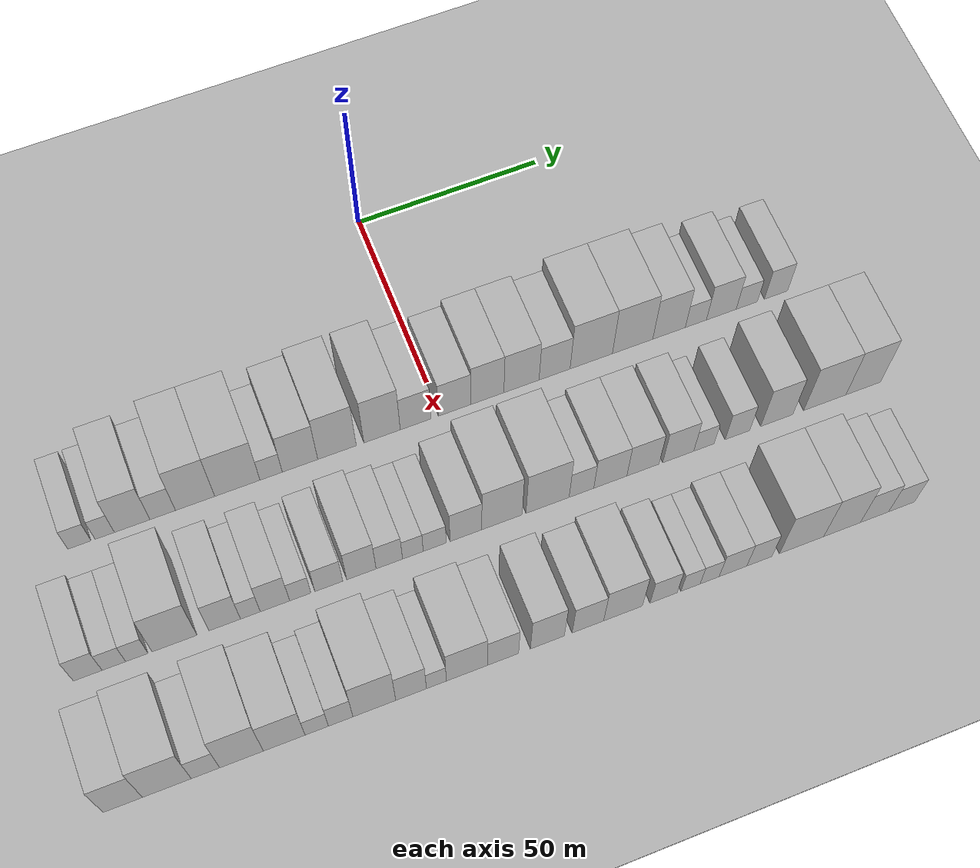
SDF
<sdf version="1.6">
 <world name="default">
  <include><name>ground_plane_1</name><uri>model://HANNAS_ground_plane</uri></include>
  <include>
   <name>ground_plane_2</name>
   <uri>model://HANNAS_ground_plane</uri>
   <pose>100 0 0  0 0 0</pose>
  </include>
  <model name="building_25">
   <static>1</static>
   <pose>50.0000 -93.4552 0 0.000000 0.000000 0.000000</pose>
   <link name="link">
    <pose>0 0 6.00 0 0 0</pose>
    <collision name="collision"><geometry><box><size>20.0000 5.8363 12.0000</size></box></geometry></collision>
    <visual name="visual">
     <cast_shadows>0</cast_shadows>
     <geometry><box><size>20.0000 5.8363 12.0000</size></box></geometry>
     <material>
      <script>
       <uri>model://HANNAS_wall/materials/scripts</uri>
       <uri>model://HANNAS_wall/materials/textures</uri>
       <name>vrc/HANNAS_wall</name>
      </script>
     </material>
    </visual>
   </link>
  </model>
  <model name="building_26">
   <static>1</static>
   <pose>50.0000 -87.1058 0 0.000000 0.000000 0.000000</pose>
   <link name="link">
    <pose>0 0 6.00 0 0 0</pose>
    <collision name="collision"><geometry><box><size>20.0000 4.8624 12.0000</size></box></geometry></collision>
    <visual name="visual">
     <cast_shadows>0</cast_shadows>
     <geometry><box><size>20.0000 4.8624 12.0000</size></box></geometry>
     <material>
      <script>
       <uri>model://HANNAS_wall/materials/scripts</uri>
       <uri>model://HANNAS_wall/materials/textures</uri>
       <name>vrc/HANNAS_wall</name>
      </script>
     </material>
    </visual>
   </link>
  </model>
  <model name="building_27">
   <static>1</static>
   <pose>50.0000 -80.1643 0 0.000000 0.000000 0.000000</pose>
   <link name="link">
    <pose>0 0 10.50 0 0 0</pose>
    <collision name="collision"><geometry><box><size>20.0000 9.0205 21.0000</size></box></geometry></collision>
    <visual name="visual">
     <cast_shadows>0</cast_shadows>
     <geometry><box><size>20.0000 9.0205 21.0000</size></box></geometry>
     <material>
      <script>
       <uri>model://HANNAS_wall/materials/scripts</uri>
       <uri>model://HANNAS_wall/materials/textures</uri>
       <name>vrc/HANNAS_wall</name>
      </script>
     </material>
    </visual>
   </link>
  </model>
  <model name="building_28">
   <static>1</static>
   <pose>50.0000 -72.4068 0 0.000000 0.000000 0.000000</pose>
   <link name="link">
    <pose>0 0 7.50 0 0 0</pose>
    <collision name="collision"><geometry><box><size>20.0000 6.4945 15.0000</size></box></geometry></collision>
    <visual name="visual">
     <cast_shadows>0</cast_shadows>
     <geometry><box><size>20.0000 6.4945 15.0000</size></box></geometry>
     <material>
      <script>
       <uri>model://HANNAS_wall/materials/scripts</uri>
       <uri>model://HANNAS_wall/materials/textures</uri>
       <name>vrc/HANNAS_wall</name>
      </script>
     </material>
    </visual>
   </link>
  </model>
  <model name="building_29">
   <static>1</static>
   <pose>50.0000 -64.1397 0 0.000000 0.000000 0.000000</pose>
   <link name="link">
    <pose>0 0 12.00 0 0 0</pose>
    <collision name="collision"><geometry><box><size>20.0000 10.0398 24.0000</size></box></geometry></collision>
    <visual name="visual">
     <cast_shadows>0</cast_shadows>
     <geometry><box><size>20.0000 10.0398 24.0000</size></box></geometry>
     <material>
      <script>
       <uri>model://HANNAS_wall/materials/scripts</uri>
       <uri>model://HANNAS_wall/materials/textures</uri>
       <name>vrc/HANNAS_wall</name>
      </script>
     </material>
    </visual>
   </link>
  </model>
  <model name="building_30">
   <static>1</static>
   <pose>50.0000 -53.2822 0 0.000000 0.000000 0.000000</pose>
   <link name="link">
    <pose>0 0 12.00 0 0 0</pose>
    <collision name="collision"><geometry><box><size>20.0000 11.6751 24.0000</size></box></geometry></collision>
    <visual name="visual">
     <cast_shadows>0</cast_shadows>
     <geometry><box><size>20.0000 11.6751 24.0000</size></box></geometry>
     <material>
      <script>
       <uri>model://HANNAS_wall/materials/scripts</uri>
       <uri>model://HANNAS_wall/materials/textures</uri>
       <name>vrc/HANNAS_wall</name>
      </script>
     </material>
    </visual>
   </link>
  </model>
  <model name="building_31">
   <static>1</static>
   <pose>50.0000 -44.5478 0 0.000000 0.000000 0.000000</pose>
   <link name="link">
    <pose>0 0 6.00 0 0 0</pose>
    <collision name="collision"><geometry><box><size>20.0000 5.7937 12.0000</size></box></geometry></collision>
    <visual name="visual">
     <cast_shadows>0</cast_shadows>
     <geometry><box><size>20.0000 5.7937 12.0000</size></box></geometry>
     <material>
      <script>
       <uri>model://HANNAS_wall/materials/scripts</uri>
       <uri>model://HANNAS_wall/materials/textures</uri>
       <name>vrc/HANNAS_wall</name>
      </script>
     </material>
    </visual>
   </link>
  </model>
  <model name="building_32">
   <static>1</static>
   <pose>50.0000 -37.0297 0 0.000000 0.000000 0.000000</pose>
   <link name="link">
    <pose>0 0 10.50 0 0 0</pose>
    <collision name="collision"><geometry><box><size>20.0000 9.2426 21.0000</size></box></geometry></collision>
    <visual name="visual">
     <cast_shadows>0</cast_shadows>
     <geometry><box><size>20.0000 9.2426 21.0000</size></box></geometry>
     <material>
      <script>
       <uri>model://HANNAS_wall/materials/scripts</uri>
       <uri>model://HANNAS_wall/materials/textures</uri>
       <name>vrc/HANNAS_wall</name>
      </script>
     </material>
    </visual>
   </link>
  </model>
  <model name="building_33">
   <static>1</static>
   <pose>50.0000 -27.3568 0 0.000000 0.000000 0.000000</pose>
   <link name="link">
    <pose>0 0 12.00 0 0 0</pose>
    <collision name="collision"><geometry><box><size>20.0000 10.1032 24.0000</size></box></geometry></collision>
    <visual name="visual">
     <cast_shadows>0</cast_shadows>
     <geometry><box><size>20.0000 10.1032 24.0000</size></box></geometry>
     <material>
      <script>
       <uri>model://HANNAS_wall/materials/scripts</uri>
       <uri>model://HANNAS_wall/materials/textures</uri>
       <name>vrc/HANNAS_wall</name>
      </script>
     </material>
    </visual>
   </link>
  </model>
  <model name="building_34">
   <static>1</static>
   <pose>50.0000 -15.4918 0 0.000000 0.000000 0.000000</pose>
   <link name="link">
    <pose>0 0 12.00 0 0 0</pose>
    <collision name="collision"><geometry><box><size>20.0000 9.6268 24.0000</size></box></geometry></collision>
    <visual name="visual">
     <cast_shadows>0</cast_shadows>
     <geometry><box><size>20.0000 9.6268 24.0000</size></box></geometry>
     <material>
      <script>
       <uri>model://HANNAS_wall/materials/scripts</uri>
       <uri>model://HANNAS_wall/materials/textures</uri>
       <name>vrc/HANNAS_wall</name>
      </script>
     </material>
    </visual>
   </link>
  </model>
  <model name="building_35">
   <static>1</static>
   <pose>50.0000 -6.5953 0 0.000000 0.000000 0.000000</pose>
   <link name="link">
    <pose>0 0 9.00 0 0 0</pose>
    <collision name="collision"><geometry><box><size>20.0000 8.1662 18.0000</size></box></geometry></collision>
    <visual name="visual">
     <cast_shadows>0</cast_shadows>
     <geometry><box><size>20.0000 8.1662 18.0000</size></box></geometry>
     <material>
      <script>
       <uri>model://HANNAS_wall/materials/scripts</uri>
       <uri>model://HANNAS_wall/materials/textures</uri>
       <name>vrc/HANNAS_wall</name>
      </script>
     </material>
    </visual>
   </link>
  </model>
  <model name="building_36">
   <static>1</static>
   <pose>50.0000 3.8273 0 0.000000 0.000000 0.000000</pose>
   <link name="link">
    <pose>0 0 9.00 0 0 0</pose>
    <collision name="collision"><geometry><box><size>20.0000 8.6790 18.0000</size></box></geometry></collision>
    <visual name="visual">
     <cast_shadows>0</cast_shadows>
     <geometry><box><size>20.0000 8.6790 18.0000</size></box></geometry>
     <material>
      <script>
       <uri>model://HANNAS_wall/materials/scripts</uri>
       <uri>model://HANNAS_wall/materials/textures</uri>
       <name>vrc/HANNAS_wall</name>
      </script>
     </material>
    </visual>
   </link>
  </model>
  <model name="building_37">
   <static>1</static>
   <pose>50.0000 12.6170 0 0.000000 0.000000 0.000000</pose>
   <link name="link">
    <pose>0 0 10.50 0 0 0</pose>
    <collision name="collision"><geometry><box><size>20.0000 8.9003 21.0000</size></box></geometry></collision>
    <visual name="visual">
     <cast_shadows>0</cast_shadows>
     <geometry><box><size>20.0000 8.9003 21.0000</size></box></geometry>
     <material>
      <script>
       <uri>model://HANNAS_wall/materials/scripts</uri>
       <uri>model://HANNAS_wall/materials/textures</uri>
       <name>vrc/HANNAS_wall</name>
      </script>
     </material>
    </visual>
   </link>
  </model>
  <model name="building_38">
   <static>1</static>
   <pose>50.0000 21.8389 0 0.000000 0.000000 0.000000</pose>
   <link name="link">
    <pose>0 0 10.50 0 0 0</pose>
    <collision name="collision"><geometry><box><size>20.0000 9.5435 21.0000</size></box></geometry></collision>
    <visual name="visual">
     <cast_shadows>0</cast_shadows>
     <geometry><box><size>20.0000 9.5435 21.0000</size></box></geometry>
     <material>
      <script>
       <uri>model://HANNAS_wall/materials/scripts</uri>
       <uri>model://HANNAS_wall/materials/textures</uri>
       <name>vrc/HANNAS_wall</name>
      </script>
     </material>
    </visual>
   </link>
  </model>
  <model name="building_39">
   <static>1</static>
   <pose>50.0000 30.8368 0 0.000000 0.000000 0.000000</pose>
   <link name="link">
    <pose>0 0 9.00 0 0 0</pose>
    <collision name="collision"><geometry><box><size>20.0000 8.4524 18.0000</size></box></geometry></collision>
    <visual name="visual">
     <cast_shadows>0</cast_shadows>
     <geometry><box><size>20.0000 8.4524 18.0000</size></box></geometry>
     <material>
      <script>
       <uri>model://HANNAS_wall/materials/scripts</uri>
       <uri>model://HANNAS_wall/materials/textures</uri>
       <name>vrc/HANNAS_wall</name>
      </script>
     </material>
    </visual>
   </link>
  </model>
  <model name="building_40">
   <static>1</static>
   <pose>50.0000 40.8845 0 0.000000 0.000000 0.000000</pose>
   <link name="link">
    <pose>0 0 12.00 0 0 0</pose>
    <collision name="collision"><geometry><box><size>20.0000 11.6430 24.0000</size></box></geometry></collision>
    <visual name="visual">
     <cast_shadows>0</cast_shadows>
     <geometry><box><size>20.0000 11.6430 24.0000</size></box></geometry>
     <material>
      <script>
       <uri>model://HANNAS_wall/materials/scripts</uri>
       <uri>model://HANNAS_wall/materials/textures</uri>
       <name>vrc/HANNAS_wall</name>
      </script>
     </material>
    </visual>
   </link>
  </model>
  <model name="building_41">
   <static>1</static>
   <pose>50.0000 52.2881 0 0.000000 0.000000 0.000000</pose>
   <link name="link">
    <pose>0 0 12.00 0 0 0</pose>
    <collision name="collision"><geometry><box><size>20.0000 11.1642 24.0000</size></box></geometry></collision>
    <visual name="visual">
     <cast_shadows>0</cast_shadows>
     <geometry><box><size>20.0000 11.1642 24.0000</size></box></geometry>
     <material>
      <script>
       <uri>model://HANNAS_wall/materials/scripts</uri>
       <uri>model://HANNAS_wall/materials/textures</uri>
       <name>vrc/HANNAS_wall</name>
      </script>
     </material>
    </visual>
   </link>
  </model>
  <model name="building_42">
   <static>1</static>
   <pose>50.0000 62.4153 0 0.000000 0.000000 0.000000</pose>
   <link name="link">
    <pose>0 0 10.50 0 0 0</pose>
    <collision name="collision"><geometry><box><size>20.0000 9.0902 21.0000</size></box></geometry></collision>
    <visual name="visual">
     <cast_shadows>0</cast_shadows>
     <geometry><box><size>20.0000 9.0902 21.0000</size></box></geometry>
     <material>
      <script>
       <uri>model://HANNAS_wall/materials/scripts</uri>
       <uri>model://HANNAS_wall/materials/textures</uri>
       <name>vrc/HANNAS_wall</name>
      </script>
     </material>
    </visual>
   </link>
  </model>
  <model name="building_43">
   <static>1</static>
   <pose>50.0000 69.9059 0 0.000000 0.000000 0.000000</pose>
   <link name="link">
    <pose>0 0 6.00 0 0 0</pose>
    <collision name="collision"><geometry><box><size>20.0000 5.8910 12.0000</size></box></geometry></collision>
    <visual name="visual">
     <cast_shadows>0</cast_shadows>
     <geometry><box><size>20.0000 5.8910 12.0000</size></box></geometry>
     <material>
      <script>
       <uri>model://HANNAS_wall/materials/scripts</uri>
       <uri>model://HANNAS_wall/materials/textures</uri>
       <name>vrc/HANNAS_wall</name>
      </script>
     </material>
    </visual>
   </link>
  </model>
  <model name="building_44">
   <static>1</static>
   <pose>50.0000 77.0381 0 0.000000 0.000000 0.000000</pose>
   <link name="link">
    <pose>0 0 9.00 0 0 0</pose>
    <collision name="collision"><geometry><box><size>20.0000 8.3734 18.0000</size></box></geometry></collision>
    <visual name="visual">
     <cast_shadows>0</cast_shadows>
     <geometry><box><size>20.0000 8.3734 18.0000</size></box></geometry>
     <material>
      <script>
       <uri>model://HANNAS_wall/materials/scripts</uri>
       <uri>model://HANNAS_wall/materials/textures</uri>
       <name>vrc/HANNAS_wall</name>
      </script>
     </material>
    </visual>
   </link>
  </model>
  <model name="building_45">
   <static>1</static>
   <pose>50.0000 84.2231 0 0.000000 0.000000 0.000000</pose>
   <link name="link">
    <pose>0 0 6.00 0 0 0</pose>
    <collision name="collision"><geometry><box><size>20.0000 5.9965 12.0000</size></box></geometry></collision>
    <visual name="visual">
     <cast_shadows>0</cast_shadows>
     <geometry><box><size>20.0000 5.9965 12.0000</size></box></geometry>
     <material>
      <script>
       <uri>model://HANNAS_wall/materials/scripts</uri>
       <uri>model://HANNAS_wall/materials/textures</uri>
       <name>vrc/HANNAS_wall</name>
      </script>
     </material>
    </visual>
   </link>
  </model>
  <model name="building_46">
   <static>1</static>
   <pose>50.0000 92.5135 0 0.000000 0.000000 0.000000</pose>
   <link name="link">
    <pose>0 0 7.50 0 0 0</pose>
    <collision name="collision"><geometry><box><size>20.0000 6.5844 15.0000</size></box></geometry></collision>
    <visual name="visual">
     <cast_shadows>0</cast_shadows>
     <geometry><box><size>20.0000 6.5844 15.0000</size></box></geometry>
     <material>
      <script>
       <uri>model://HANNAS_wall/materials/scripts</uri>
       <uri>model://HANNAS_wall/materials/textures</uri>
       <name>vrc/HANNAS_wall</name>
      </script>
     </material>
    </visual>
   </link>
  </model>
  <model name="building_99">
   <static>1</static>
   <pose>82.0000 -100.7794 0 0.000000 0.000000 0.000000</pose>
   <link name="link">
    <pose>0 0 7.50 0 0 0</pose>
    <collision name="collision"><geometry><box><size>20.0000 7.0181 15.0000</size></box></geometry></collision>
    <visual name="visual">
     <cast_shadows>0</cast_shadows>
     <geometry><box><size>20.0000 7.0181 15.0000</size></box></geometry>
     <material>
      <script>
       <uri>model://HANNAS_wall/materials/scripts</uri>
       <uri>model://HANNAS_wall/materials/textures</uri>
       <name>vrc/HANNAS_wall</name>
      </script>
     </material>
    </visual>
   </link>
  </model>
  <model name="building_100">
   <static>1</static>
   <pose>82.0000 -94.3879 0 0.000000 0.000000 0.000000</pose>
   <link name="link">
    <pose>0 0 6.00 0 0 0</pose>
    <collision name="collision"><geometry><box><size>20.0000 5.7650 12.0000</size></box></geometry></collision>
    <visual name="visual">
     <cast_shadows>0</cast_shadows>
     <geometry><box><size>20.0000 5.7650 12.0000</size></box></geometry>
     <material>
      <script>
       <uri>model://HANNAS_wall/materials/scripts</uri>
       <uri>model://HANNAS_wall/materials/textures</uri>
       <name>vrc/HANNAS_wall</name>
      </script>
     </material>
    </visual>
   </link>
  </model>
  <model name="building_101">
   <static>1</static>
   <pose>82.0000 -88.7665 0 0.000000 0.000000 0.000000</pose>
   <link name="link">
    <pose>0 0 6.00 0 0 0</pose>
    <collision name="collision"><geometry><box><size>20.0000 5.4777 12.0000</size></box></geometry></collision>
    <visual name="visual">
     <cast_shadows>0</cast_shadows>
     <geometry><box><size>20.0000 5.4777 12.0000</size></box></geometry>
     <material>
      <script>
       <uri>model://HANNAS_wall/materials/scripts</uri>
       <uri>model://HANNAS_wall/materials/textures</uri>
       <name>vrc/HANNAS_wall</name>
      </script>
     </material>
    </visual>
   </link>
  </model>
  <model name="building_102">
   <static>1</static>
   <pose>82.0000 -79.4853 0 0.000000 0.000000 0.000000</pose>
   <link name="link">
    <pose>0 0 12.00 0 0 0</pose>
    <collision name="collision"><geometry><box><size>20.0000 11.0846 24.0000</size></box></geometry></collision>
    <visual name="visual">
     <cast_shadows>0</cast_shadows>
     <geometry><box><size>20.0000 11.0846 24.0000</size></box></geometry>
     <material>
      <script>
       <uri>model://HANNAS_wall/materials/scripts</uri>
       <uri>model://HANNAS_wall/materials/textures</uri>
       <name>vrc/HANNAS_wall</name>
      </script>
     </material>
    </visual>
   </link>
  </model>
  <model name="building_103">
   <static>1</static>
   <pose>82.0000 -67.0292 0 0.000000 0.000000 0.000000</pose>
   <link name="link">
    <pose>0 0 9.00 0 0 0</pose>
    <collision name="collision"><geometry><box><size>20.0000 7.8277 18.0000</size></box></geometry></collision>
    <visual name="visual">
     <cast_shadows>0</cast_shadows>
     <geometry><box><size>20.0000 7.8277 18.0000</size></box></geometry>
     <material>
      <script>
       <uri>model://HANNAS_wall/materials/scripts</uri>
       <uri>model://HANNAS_wall/materials/textures</uri>
       <name>vrc/HANNAS_wall</name>
      </script>
     </material>
    </visual>
   </link>
  </model>
  <model name="building_104">
   <static>1</static>
   <pose>82.0000 -60.6409 0 0.000000 0.000000 0.000000</pose>
   <link name="link">
    <pose>0 0 6.00 0 0 0</pose>
    <collision name="collision"><geometry><box><size>20.0000 4.9489 12.0000</size></box></geometry></collision>
    <visual name="visual">
     <cast_shadows>0</cast_shadows>
     <geometry><box><size>20.0000 4.9489 12.0000</size></box></geometry>
     <material>
      <script>
       <uri>model://HANNAS_wall/materials/scripts</uri>
       <uri>model://HANNAS_wall/materials/textures</uri>
       <name>vrc/HANNAS_wall</name>
      </script>
     </material>
    </visual>
   </link>
  </model>
  <model name="building_105">
   <static>1</static>
   <pose>82.0000 -54.4743 0 0.000000 0.000000 0.000000</pose>
   <link name="link">
    <pose>0 0 9.00 0 0 0</pose>
    <collision name="collision"><geometry><box><size>20.0000 7.3844 18.0000</size></box></geometry></collision>
    <visual name="visual">
     <cast_shadows>0</cast_shadows>
     <geometry><box><size>20.0000 7.3844 18.0000</size></box></geometry>
     <material>
      <script>
       <uri>model://HANNAS_wall/materials/scripts</uri>
       <uri>model://HANNAS_wall/materials/textures</uri>
       <name>vrc/HANNAS_wall</name>
      </script>
     </material>
    </visual>
   </link>
  </model>
  <model name="building_106">
   <static>1</static>
   <pose>82.0000 -48.0901 0 0.000000 0.000000 0.000000</pose>
   <link name="link">
    <pose>0 0 6.00 0 0 0</pose>
    <collision name="collision"><geometry><box><size>20.0000 5.3839 12.0000</size></box></geometry></collision>
    <visual name="visual">
     <cast_shadows>0</cast_shadows>
     <geometry><box><size>20.0000 5.3839 12.0000</size></box></geometry>
     <material>
      <script>
       <uri>model://HANNAS_wall/materials/scripts</uri>
       <uri>model://HANNAS_wall/materials/textures</uri>
       <name>vrc/HANNAS_wall</name>
      </script>
     </material>
    </visual>
   </link>
  </model>
  <model name="building_107">
   <static>1</static>
   <pose>82.0000 -40.8551 0 0.000000 0.000000 0.000000</pose>
   <link name="link">
    <pose>0 0 7.50 0 0 0</pose>
    <collision name="collision"><geometry><box><size>20.0000 7.0862 15.0000</size></box></geometry></collision>
    <visual name="visual">
     <cast_shadows>0</cast_shadows>
     <geometry><box><size>20.0000 7.0862 15.0000</size></box></geometry>
     <material>
      <script>
       <uri>model://HANNAS_wall/materials/scripts</uri>
       <uri>model://HANNAS_wall/materials/textures</uri>
       <name>vrc/HANNAS_wall</name>
      </script>
     </material>
    </visual>
   </link>
  </model>
  <model name="building_108">
   <static>1</static>
   <pose>82.0000 -32.5612 0 0.000000 0.000000 0.000000</pose>
   <link name="link">
    <pose>0 0 9.00 0 0 0</pose>
    <collision name="collision"><geometry><box><size>20.0000 7.5016 18.0000</size></box></geometry></collision>
    <visual name="visual">
     <cast_shadows>0</cast_shadows>
     <geometry><box><size>20.0000 7.5016 18.0000</size></box></geometry>
     <material>
      <script>
       <uri>model://HANNAS_wall/materials/scripts</uri>
       <uri>model://HANNAS_wall/materials/textures</uri>
       <name>vrc/HANNAS_wall</name>
      </script>
     </material>
    </visual>
   </link>
  </model>
  <model name="building_109">
   <static>1</static>
   <pose>82.0000 -25.4189 0 0.000000 0.000000 0.000000</pose>
   <link name="link">
    <pose>0 0 7.50 0 0 0</pose>
    <collision name="collision"><geometry><box><size>20.0000 6.7830 15.0000</size></box></geometry></collision>
    <visual name="visual">
     <cast_shadows>0</cast_shadows>
     <geometry><box><size>20.0000 6.7830 15.0000</size></box></geometry>
     <material>
      <script>
       <uri>model://HANNAS_wall/materials/scripts</uri>
       <uri>model://HANNAS_wall/materials/textures</uri>
       <name>vrc/HANNAS_wall</name>
      </script>
     </material>
    </visual>
   </link>
  </model>
  <model name="building_110">
   <static>1</static>
   <pose>82.0000 -19.3626 0 0.000000 0.000000 0.000000</pose>
   <link name="link">
    <pose>0 0 6.00 0 0 0</pose>
    <collision name="collision"><geometry><box><size>20.0000 5.3297 12.0000</size></box></geometry></collision>
    <visual name="visual">
     <cast_shadows>0</cast_shadows>
     <geometry><box><size>20.0000 5.3297 12.0000</size></box></geometry>
     <material>
      <script>
       <uri>model://HANNAS_wall/materials/scripts</uri>
       <uri>model://HANNAS_wall/materials/textures</uri>
       <name>vrc/HANNAS_wall</name>
      </script>
     </material>
    </visual>
   </link>
  </model>
  <model name="building_111">
   <static>1</static>
   <pose>82.0000 -13.7216 0 0.000000 0.000000 0.000000</pose>
   <link name="link">
    <pose>0 0 6.00 0 0 0</pose>
    <collision name="collision"><geometry><box><size>20.0000 5.9522 12.0000</size></box></geometry></collision>
    <visual name="visual">
     <cast_shadows>0</cast_shadows>
     <geometry><box><size>20.0000 5.9522 12.0000</size></box></geometry>
     <material>
      <script>
       <uri>model://HANNAS_wall/materials/scripts</uri>
       <uri>model://HANNAS_wall/materials/textures</uri>
       <name>vrc/HANNAS_wall</name>
      </script>
     </material>
    </visual>
   </link>
  </model>
  <model name="building_112">
   <static>1</static>
   <pose>82.0000 -5.6288 0 0.000000 0.000000 0.000000</pose>
   <link name="link">
    <pose>0 0 9.00 0 0 0</pose>
    <collision name="collision"><geometry><box><size>20.0000 8.2335 18.0000</size></box></geometry></collision>
    <visual name="visual">
     <cast_shadows>0</cast_shadows>
     <geometry><box><size>20.0000 8.2335 18.0000</size></box></geometry>
     <material>
      <script>
       <uri>model://HANNAS_wall/materials/scripts</uri>
       <uri>model://HANNAS_wall/materials/textures</uri>
       <name>vrc/HANNAS_wall</name>
      </script>
     </material>
    </visual>
   </link>
  </model>
  <model name="building_113">
   <static>1</static>
   <pose>82.0000 3.7728 0 0.000000 0.000000 0.000000</pose>
   <link name="link">
    <pose>0 0 12.00 0 0 0</pose>
    <collision name="collision"><geometry><box><size>20.0000 10.5697 24.0000</size></box></geometry></collision>
    <visual name="visual">
     <cast_shadows>0</cast_shadows>
     <geometry><box><size>20.0000 10.5697 24.0000</size></box></geometry>
     <material>
      <script>
       <uri>model://HANNAS_wall/materials/scripts</uri>
       <uri>model://HANNAS_wall/materials/textures</uri>
       <name>vrc/HANNAS_wall</name>
      </script>
     </material>
    </visual>
   </link>
  </model>
  <model name="building_114">
   <static>1</static>
   <pose>82.0000 15.7465 0 0.000000 0.000000 0.000000</pose>
   <link name="link">
    <pose>0 0 12.00 0 0 0</pose>
    <collision name="collision"><geometry><box><size>20.0000 11.3777 24.0000</size></box></geometry></collision>
    <visual name="visual">
     <cast_shadows>0</cast_shadows>
     <geometry><box><size>20.0000 11.3777 24.0000</size></box></geometry>
     <material>
      <script>
       <uri>model://HANNAS_wall/materials/scripts</uri>
       <uri>model://HANNAS_wall/materials/textures</uri>
       <name>vrc/HANNAS_wall</name>
      </script>
     </material>
    </visual>
   </link>
  </model>
  <model name="building_115">
   <static>1</static>
   <pose>82.0000 24.7164 0 0.000000 0.000000 0.000000</pose>
   <link name="link">
    <pose>0 0 7.50 0 0 0</pose>
    <collision name="collision"><geometry><box><size>20.0000 6.5621 15.0000</size></box></geometry></collision>
    <visual name="visual">
     <cast_shadows>0</cast_shadows>
     <geometry><box><size>20.0000 6.5621 15.0000</size></box></geometry>
     <material>
      <script>
       <uri>model://HANNAS_wall/materials/scripts</uri>
       <uri>model://HANNAS_wall/materials/textures</uri>
       <name>vrc/HANNAS_wall</name>
      </script>
     </material>
    </visual>
   </link>
  </model>
  <model name="building_116">
   <static>1</static>
   <pose>82.0000 32.4088 0 0.000000 0.000000 0.000000</pose>
   <link name="link">
    <pose>0 0 9.00 0 0 0</pose>
    <collision name="collision"><geometry><box><size>20.0000 8.8228 18.0000</size></box></geometry></collision>
    <visual name="visual">
     <cast_shadows>0</cast_shadows>
     <geometry><box><size>20.0000 8.8228 18.0000</size></box></geometry>
     <material>
      <script>
       <uri>model://HANNAS_wall/materials/scripts</uri>
       <uri>model://HANNAS_wall/materials/textures</uri>
       <name>vrc/HANNAS_wall</name>
      </script>
     </material>
    </visual>
   </link>
  </model>
  <model name="building_117">
   <static>1</static>
   <pose>82.0000 41.1415 0 0.000000 0.000000 0.000000</pose>
   <link name="link">
    <pose>0 0 9.00 0 0 0</pose>
    <collision name="collision"><geometry><box><size>20.0000 8.6426 18.0000</size></box></geometry></collision>
    <visual name="visual">
     <cast_shadows>0</cast_shadows>
     <geometry><box><size>20.0000 8.6426 18.0000</size></box></geometry>
     <material>
      <script>
       <uri>model://HANNAS_wall/materials/scripts</uri>
       <uri>model://HANNAS_wall/materials/textures</uri>
       <name>vrc/HANNAS_wall</name>
      </script>
     </material>
    </visual>
   </link>
  </model>
  <model name="building_118">
   <static>1</static>
   <pose>82.0000 50.6567 0 0.000000 0.000000 0.000000</pose>
   <link name="link">
    <pose>0 0 9.00 0 0 0</pose>
    <collision name="collision"><geometry><box><size>20.0000 8.3878 18.0000</size></box></geometry></collision>
    <visual name="visual">
     <cast_shadows>0</cast_shadows>
     <geometry><box><size>20.0000 8.3878 18.0000</size></box></geometry>
     <material>
      <script>
       <uri>model://HANNAS_wall/materials/scripts</uri>
       <uri>model://HANNAS_wall/materials/textures</uri>
       <name>vrc/HANNAS_wall</name>
      </script>
     </material>
    </visual>
   </link>
  </model>
  <model name="building_119">
   <static>1</static>
   <pose>82.0000 57.6190 0 0.000000 0.000000 0.000000</pose>
   <link name="link">
    <pose>0 0 6.00 0 0 0</pose>
    <collision name="collision"><geometry><box><size>20.0000 5.5368 12.0000</size></box></geometry></collision>
    <visual name="visual">
     <cast_shadows>0</cast_shadows>
     <geometry><box><size>20.0000 5.5368 12.0000</size></box></geometry>
     <material>
      <script>
       <uri>model://HANNAS_wall/materials/scripts</uri>
       <uri>model://HANNAS_wall/materials/textures</uri>
       <name>vrc/HANNAS_wall</name>
      </script>
     </material>
    </visual>
   </link>
  </model>
  <model name="building_120">
   <static>1</static>
   <pose>82.0000 66.7506 0 0.000000 0.000000 0.000000</pose>
   <link name="link">
    <pose>0 0 7.50 0 0 0</pose>
    <collision name="collision"><geometry><box><size>20.0000 6.7265 15.0000</size></box></geometry></collision>
    <visual name="visual">
     <cast_shadows>0</cast_shadows>
     <geometry><box><size>20.0000 6.7265 15.0000</size></box></geometry>
     <material>
      <script>
       <uri>model://HANNAS_wall/materials/scripts</uri>
       <uri>model://HANNAS_wall/materials/textures</uri>
       <name>vrc/HANNAS_wall</name>
      </script>
     </material>
    </visual>
   </link>
  </model>
  <model name="building_121">
   <static>1</static>
   <pose>82.0000 77.5383 0 0.000000 0.000000 0.000000</pose>
   <link name="link">
    <pose>0 0 10.50 0 0 0</pose>
    <collision name="collision"><geometry><box><size>20.0000 8.8488 21.0000</size></box></geometry></collision>
    <visual name="visual">
     <cast_shadows>0</cast_shadows>
     <geometry><box><size>20.0000 8.8488 21.0000</size></box></geometry>
     <material>
      <script>
       <uri>model://HANNAS_wall/materials/scripts</uri>
       <uri>model://HANNAS_wall/materials/textures</uri>
       <name>vrc/HANNAS_wall</name>
      </script>
     </material>
    </visual>
   </link>
  </model>
  <model name="building_122">
   <static>1</static>
   <pose>82.0000 90.8329 0 0.000000 0.000000 0.000000</pose>
   <link name="link">
    <pose>0 0 12.00 0 0 0</pose>
    <collision name="collision"><geometry><box><size>20.0000 11.7405 24.0000</size></box></geometry></collision>
    <visual name="visual">
     <cast_shadows>0</cast_shadows>
     <geometry><box><size>20.0000 11.7405 24.0000</size></box></geometry>
     <material>
      <script>
       <uri>model://HANNAS_wall/materials/scripts</uri>
       <uri>model://HANNAS_wall/materials/textures</uri>
       <name>vrc/HANNAS_wall</name>
      </script>
     </material>
    </visual>
   </link>
  </model>
  <model name="building_123">
   <static>1</static>
   <pose>82.0000 101.5374 0 0.000000 0.000000 0.000000</pose>
   <link name="link">
    <pose>0 0 12.00 0 0 0</pose>
    <collision name="collision"><geometry><box><size>20.0000 9.6685 24.0000</size></box></geometry></collision>
    <visual name="visual">
     <cast_shadows>0</cast_shadows>
     <geometry><box><size>20.0000 9.6685 24.0000</size></box></geometry>
     <material>
      <script>
       <uri>model://HANNAS_wall/materials/scripts</uri>
       <uri>model://HANNAS_wall/materials/textures</uri>
       <name>vrc/HANNAS_wall</name>
      </script>
     </material>
    </visual>
   </link>
  </model>
  <model name="building_171">
   <static>1</static>
   <pose>114.0000 -101.9005 0 0.000000 0.000000 0.000000</pose>
   <link name="link">
    <pose>0 0 10.50 0 0 0</pose>
    <collision name="collision"><geometry><box><size>20.0000 9.3052 21.0000</size></box></geometry></collision>
    <visual name="visual">
     <cast_shadows>0</cast_shadows>
     <geometry><box><size>20.0000 9.3052 21.0000</size></box></geometry>
     <material>
      <script>
       <uri>model://HANNAS_wall/materials/scripts</uri>
       <uri>model://HANNAS_wall/materials/textures</uri>
       <name>vrc/HANNAS_wall</name>
      </script>
     </material>
    </visual>
   </link>
  </model>
  <model name="building_172">
   <static>1</static>
   <pose>114.0000 -91.4261 0 0.000000 0.000000 0.000000</pose>
   <link name="link">
    <pose>0 0 12.00 0 0 0</pose>
    <collision name="collision"><geometry><box><size>20.0000 11.6437 24.0000</size></box></geometry></collision>
    <visual name="visual">
     <cast_shadows>0</cast_shadows>
     <geometry><box><size>20.0000 11.6437 24.0000</size></box></geometry>
     <material>
      <script>
       <uri>model://HANNAS_wall/materials/scripts</uri>
       <uri>model://HANNAS_wall/materials/textures</uri>
       <name>vrc/HANNAS_wall</name>
      </script>
     </material>
    </visual>
   </link>
  </model>
  <model name="building_173">
   <static>1</static>
   <pose>114.0000 -82.1903 0 0.000000 0.000000 0.000000</pose>
   <link name="link">
    <pose>0 0 7.50 0 0 0</pose>
    <collision name="collision"><geometry><box><size>20.0000 6.8279 15.0000</size></box></geometry></collision>
    <visual name="visual">
     <cast_shadows>0</cast_shadows>
     <geometry><box><size>20.0000 6.8279 15.0000</size></box></geometry>
     <material>
      <script>
       <uri>model://HANNAS_wall/materials/scripts</uri>
       <uri>model://HANNAS_wall/materials/textures</uri>
       <name>vrc/HANNAS_wall</name>
      </script>
     </material>
    </visual>
   </link>
  </model>
  <model name="building_174">
   <static>1</static>
   <pose>114.0000 -73.4833 0 0.000000 0.000000 0.000000</pose>
   <link name="link">
    <pose>0 0 12.00 0 0 0</pose>
    <collision name="collision"><geometry><box><size>20.0000 10.5860 24.0000</size></box></geometry></collision>
    <visual name="visual">
     <cast_shadows>0</cast_shadows>
     <geometry><box><size>20.0000 10.5860 24.0000</size></box></geometry>
     <material>
      <script>
       <uri>model://HANNAS_wall/materials/scripts</uri>
       <uri>model://HANNAS_wall/materials/textures</uri>
       <name>vrc/HANNAS_wall</name>
      </script>
     </material>
    </visual>
   </link>
  </model>
  <model name="building_175">
   <static>1</static>
   <pose>114.0000 -63.1086 0 0.000000 0.000000 0.000000</pose>
   <link name="link">
    <pose>0 0 10.50 0 0 0</pose>
    <collision name="collision"><geometry><box><size>20.0000 10.1636 21.0000</size></box></geometry></collision>
    <visual name="visual">
     <cast_shadows>0</cast_shadows>
     <geometry><box><size>20.0000 10.1636 21.0000</size></box></geometry>
     <material>
      <script>
       <uri>model://HANNAS_wall/materials/scripts</uri>
       <uri>model://HANNAS_wall/materials/textures</uri>
       <name>vrc/HANNAS_wall</name>
      </script>
     </material>
    </visual>
   </link>
  </model>
  <model name="building_176">
   <static>1</static>
   <pose>114.0000 -55.1586 0 0.000000 0.000000 0.000000</pose>
   <link name="link">
    <pose>0 0 6.00 0 0 0</pose>
    <collision name="collision"><geometry><box><size>20.0000 5.7364 12.0000</size></box></geometry></collision>
    <visual name="visual">
     <cast_shadows>0</cast_shadows>
     <geometry><box><size>20.0000 5.7364 12.0000</size></box></geometry>
     <material>
      <script>
       <uri>model://HANNAS_wall/materials/scripts</uri>
       <uri>model://HANNAS_wall/materials/textures</uri>
       <name>vrc/HANNAS_wall</name>
      </script>
     </material>
    </visual>
   </link>
  </model>
  <model name="building_177">
   <static>1</static>
   <pose>114.0000 -49.2790 0 0.000000 0.000000 0.000000</pose>
   <link name="link">
    <pose>0 0 7.50 0 0 0</pose>
    <collision name="collision"><geometry><box><size>20.0000 6.0228 15.0000</size></box></geometry></collision>
    <visual name="visual">
     <cast_shadows>0</cast_shadows>
     <geometry><box><size>20.0000 6.0228 15.0000</size></box></geometry>
     <material>
      <script>
       <uri>model://HANNAS_wall/materials/scripts</uri>
       <uri>model://HANNAS_wall/materials/textures</uri>
       <name>vrc/HANNAS_wall</name>
      </script>
     </material>
    </visual>
   </link>
  </model>
  <model name="building_178">
   <static>1</static>
   <pose>114.0000 -40.9698 0 0.000000 0.000000 0.000000</pose>
   <link name="link">
    <pose>0 0 12.00 0 0 0</pose>
    <collision name="collision"><geometry><box><size>20.0000 10.5954 24.0000</size></box></geometry></collision>
    <visual name="visual">
     <cast_shadows>0</cast_shadows>
     <geometry><box><size>20.0000 10.5954 24.0000</size></box></geometry>
     <material>
      <script>
       <uri>model://HANNAS_wall/materials/scripts</uri>
       <uri>model://HANNAS_wall/materials/textures</uri>
       <name>vrc/HANNAS_wall</name>
      </script>
     </material>
    </visual>
   </link>
  </model>
  <model name="building_179">
   <static>1</static>
   <pose>114.0000 -31.8522 0 0.000000 0.000000 0.000000</pose>
   <link name="link">
    <pose>0 0 9.00 0 0 0</pose>
    <collision name="collision"><geometry><box><size>20.0000 7.6399 18.0000</size></box></geometry></collision>
    <visual name="visual">
     <cast_shadows>0</cast_shadows>
     <geometry><box><size>20.0000 7.6399 18.0000</size></box></geometry>
     <material>
      <script>
       <uri>model://HANNAS_wall/materials/scripts</uri>
       <uri>model://HANNAS_wall/materials/textures</uri>
       <name>vrc/HANNAS_wall</name>
      </script>
     </material>
    </visual>
   </link>
  </model>
  <model name="building_180">
   <static>1</static>
   <pose>114.0000 -25.5395 0 0.000000 0.000000 0.000000</pose>
   <link name="link">
    <pose>0 0 6.00 0 0 0</pose>
    <collision name="collision"><geometry><box><size>20.0000 4.9853 12.0000</size></box></geometry></collision>
    <visual name="visual">
     <cast_shadows>0</cast_shadows>
     <geometry><box><size>20.0000 4.9853 12.0000</size></box></geometry>
     <material>
      <script>
       <uri>model://HANNAS_wall/materials/scripts</uri>
       <uri>model://HANNAS_wall/materials/textures</uri>
       <name>vrc/HANNAS_wall</name>
      </script>
     </material>
    </visual>
   </link>
  </model>
  <model name="building_181">
   <static>1</static>
   <pose>114.0000 -17.8776 0 0.000000 0.000000 0.000000</pose>
   <link name="link">
    <pose>0 0 10.50 0 0 0</pose>
    <collision name="collision"><geometry><box><size>20.0000 10.3386 21.0000</size></box></geometry></collision>
    <visual name="visual">
     <cast_shadows>0</cast_shadows>
     <geometry><box><size>20.0000 10.3386 21.0000</size></box></geometry>
     <material>
      <script>
       <uri>model://HANNAS_wall/materials/scripts</uri>
       <uri>model://HANNAS_wall/materials/textures</uri>
       <name>vrc/HANNAS_wall</name>
      </script>
     </material>
    </visual>
   </link>
  </model>
  <model name="building_182">
   <static>1</static>
   <pose>114.0000 -8.7674 0 0.000000 0.000000 0.000000</pose>
   <link name="link">
    <pose>0 0 9.00 0 0 0</pose>
    <collision name="collision"><geometry><box><size>20.0000 7.8818 18.0000</size></box></geometry></collision>
    <visual name="visual">
     <cast_shadows>0</cast_shadows>
     <geometry><box><size>20.0000 7.8818 18.0000</size></box></geometry>
     <material>
      <script>
       <uri>model://HANNAS_wall/materials/scripts</uri>
       <uri>model://HANNAS_wall/materials/textures</uri>
       <name>vrc/HANNAS_wall</name>
      </script>
     </material>
    </visual>
   </link>
  </model>
  <model name="building_183">
   <static>1</static>
   <pose>114.0000 2.5138 0 0.000000 0.000000 0.000000</pose>
   <link name="link">
    <pose>0 0 10.50 0 0 0</pose>
    <collision name="collision"><geometry><box><size>20.0000 8.6804 21.0000</size></box></geometry></collision>
    <visual name="visual">
     <cast_shadows>0</cast_shadows>
     <geometry><box><size>20.0000 8.6804 21.0000</size></box></geometry>
     <material>
      <script>
       <uri>model://HANNAS_wall/materials/scripts</uri>
       <uri>model://HANNAS_wall/materials/textures</uri>
       <name>vrc/HANNAS_wall</name>
      </script>
     </material>
    </visual>
   </link>
  </model>
  <model name="building_184">
   <static>1</static>
   <pose>114.0000 12.8977 0 0.000000 0.000000 0.000000</pose>
   <link name="link">
    <pose>0 0 9.00 0 0 0</pose>
    <collision name="collision"><geometry><box><size>20.0000 8.0874 18.0000</size></box></geometry></collision>
    <visual name="visual">
     <cast_shadows>0</cast_shadows>
     <geometry><box><size>20.0000 8.0874 18.0000</size></box></geometry>
     <material>
      <script>
       <uri>model://HANNAS_wall/materials/scripts</uri>
       <uri>model://HANNAS_wall/materials/textures</uri>
       <name>vrc/HANNAS_wall</name>
      </script>
     </material>
    </visual>
   </link>
  </model>
  <model name="building_185">
   <static>1</static>
   <pose>114.0000 21.9618 0 0.000000 0.000000 0.000000</pose>
   <link name="link">
    <pose>0 0 10.50 0 0 0</pose>
    <collision name="collision"><geometry><box><size>20.0000 10.0408 21.0000</size></box></geometry></collision>
    <visual name="visual">
     <cast_shadows>0</cast_shadows>
     <geometry><box><size>20.0000 10.0408 21.0000</size></box></geometry>
     <material>
      <script>
       <uri>model://HANNAS_wall/materials/scripts</uri>
       <uri>model://HANNAS_wall/materials/textures</uri>
       <name>vrc/HANNAS_wall</name>
      </script>
     </material>
    </visual>
   </link>
  </model>
  <model name="building_186">
   <static>1</static>
   <pose>114.0000 32.5246 0 0.000000 0.000000 0.000000</pose>
   <link name="link">
    <pose>0 0 7.50 0 0 0</pose>
    <collision name="collision"><geometry><box><size>20.0000 7.0849 15.0000</size></box></geometry></collision>
    <visual name="visual">
     <cast_shadows>0</cast_shadows>
     <geometry><box><size>20.0000 7.0849 15.0000</size></box></geometry>
     <material>
      <script>
       <uri>model://HANNAS_wall/materials/scripts</uri>
       <uri>model://HANNAS_wall/materials/textures</uri>
       <name>vrc/HANNAS_wall</name>
      </script>
     </material>
    </visual>
   </link>
  </model>
  <model name="building_187">
   <static>1</static>
   <pose>114.0000 39.5735 0 0.000000 0.000000 0.000000</pose>
   <link name="link">
    <pose>0 0 6.00 0 0 0</pose>
    <collision name="collision"><geometry><box><size>20.0000 5.0127 12.0000</size></box></geometry></collision>
    <visual name="visual">
     <cast_shadows>0</cast_shadows>
     <geometry><box><size>20.0000 5.0127 12.0000</size></box></geometry>
     <material>
      <script>
       <uri>model://HANNAS_wall/materials/scripts</uri>
       <uri>model://HANNAS_wall/materials/textures</uri>
       <name>vrc/HANNAS_wall</name>
      </script>
     </material>
    </visual>
   </link>
  </model>
  <model name="building_188">
   <static>1</static>
   <pose>114.0000 44.5818 0 0.000000 0.000000 0.000000</pose>
   <link name="link">
    <pose>0 0 6.00 0 0 0</pose>
    <collision name="collision"><geometry><box><size>20.0000 5.0041 12.0000</size></box></geometry></collision>
    <visual name="visual">
     <cast_shadows>0</cast_shadows>
     <geometry><box><size>20.0000 5.0041 12.0000</size></box></geometry>
     <material>
      <script>
       <uri>model://HANNAS_wall/materials/scripts</uri>
       <uri>model://HANNAS_wall/materials/textures</uri>
       <name>vrc/HANNAS_wall</name>
      </script>
     </material>
    </visual>
   </link>
  </model>
  <model name="building_189">
   <static>1</static>
   <pose>114.0000 50.7393 0 0.000000 0.000000 0.000000</pose>
   <link name="link">
    <pose>0 0 7.50 0 0 0</pose>
    <collision name="collision"><geometry><box><size>20.0000 7.3108 15.0000</size></box></geometry></collision>
    <visual name="visual">
     <cast_shadows>0</cast_shadows>
     <geometry><box><size>20.0000 7.3108 15.0000</size></box></geometry>
     <material>
      <script>
       <uri>model://HANNAS_wall/materials/scripts</uri>
       <uri>model://HANNAS_wall/materials/textures</uri>
       <name>vrc/HANNAS_wall</name>
      </script>
     </material>
    </visual>
   </link>
  </model>
  <model name="building_190">
   <static>1</static>
   <pose>114.0000 57.7219 0 0.000000 0.000000 0.000000</pose>
   <link name="link">
    <pose>0 0 7.50 0 0 0</pose>
    <collision name="collision"><geometry><box><size>20.0000 6.6544 15.0000</size></box></geometry></collision>
    <visual name="visual">
     <cast_shadows>0</cast_shadows>
     <geometry><box><size>20.0000 6.6544 15.0000</size></box></geometry>
     <material>
      <script>
       <uri>model://HANNAS_wall/materials/scripts</uri>
       <uri>model://HANNAS_wall/materials/textures</uri>
       <name>vrc/HANNAS_wall</name>
      </script>
     </material>
    </visual>
   </link>
  </model>
  <model name="building_191">
   <static>1</static>
   <pose>114.0000 68.9808 0 0.000000 0.000000 0.000000</pose>
   <link name="link">
    <pose>0 0 12.00 0 0 0</pose>
    <collision name="collision"><geometry><box><size>20.0000 11.8634 24.0000</size></box></geometry></collision>
    <visual name="visual">
     <cast_shadows>0</cast_shadows>
     <geometry><box><size>20.0000 11.8634 24.0000</size></box></geometry>
     <material>
      <script>
       <uri>model://HANNAS_wall/materials/scripts</uri>
       <uri>model://HANNAS_wall/materials/textures</uri>
       <name>vrc/HANNAS_wall</name>
      </script>
     </material>
    </visual>
   </link>
  </model>
  <model name="building_192">
   <static>1</static>
   <pose>114.0000 79.8519 0 0.000000 0.000000 0.000000</pose>
   <link name="link">
    <pose>0 0 12.00 0 0 0</pose>
    <collision name="collision"><geometry><box><size>20.0000 9.8789 24.0000</size></box></geometry></collision>
    <visual name="visual">
     <cast_shadows>0</cast_shadows>
     <geometry><box><size>20.0000 9.8789 24.0000</size></box></geometry>
     <material>
      <script>
       <uri>model://HANNAS_wall/materials/scripts</uri>
       <uri>model://HANNAS_wall/materials/textures</uri>
       <name>vrc/HANNAS_wall</name>
      </script>
     </material>
    </visual>
   </link>
  </model>
  <model name="building_193">
   <static>1</static>
   <pose>114.0000 88.6376 0 0.000000 0.000000 0.000000</pose>
   <link name="link">
    <pose>0 0 9.00 0 0 0</pose>
    <collision name="collision"><geometry><box><size>20.0000 7.6924 18.0000</size></box></geometry></collision>
    <visual name="visual">
     <cast_shadows>0</cast_shadows>
     <geometry><box><size>20.0000 7.6924 18.0000</size></box></geometry>
     <material>
      <script>
       <uri>model://HANNAS_wall/materials/scripts</uri>
       <uri>model://HANNAS_wall/materials/textures</uri>
       <name>vrc/HANNAS_wall</name>
      </script>
     </material>
    </visual>
   </link>
  </model>
  <model name="building_194">
   <static>1</static>
   <pose>114.0000 95.9993 0 0.000000 0.000000 0.000000</pose>
   <link name="link">
    <pose>0 0 7.50 0 0 0</pose>
    <collision name="collision"><geometry><box><size>20.0000 7.0310 15.0000</size></box></geometry></collision>
    <visual name="visual">
     <cast_shadows>0</cast_shadows>
     <geometry><box><size>20.0000 7.0310 15.0000</size></box></geometry>
     <material>
      <script>
       <uri>model://HANNAS_wall/materials/scripts</uri>
       <uri>model://HANNAS_wall/materials/textures</uri>
       <name>vrc/HANNAS_wall</name>
      </script>
     </material>
    </visual>
   </link>
  </model>
 </world>
</sdf>
